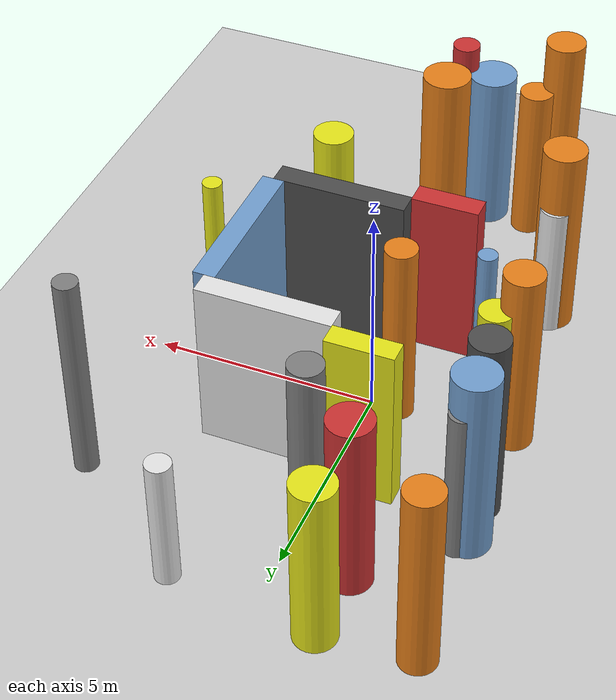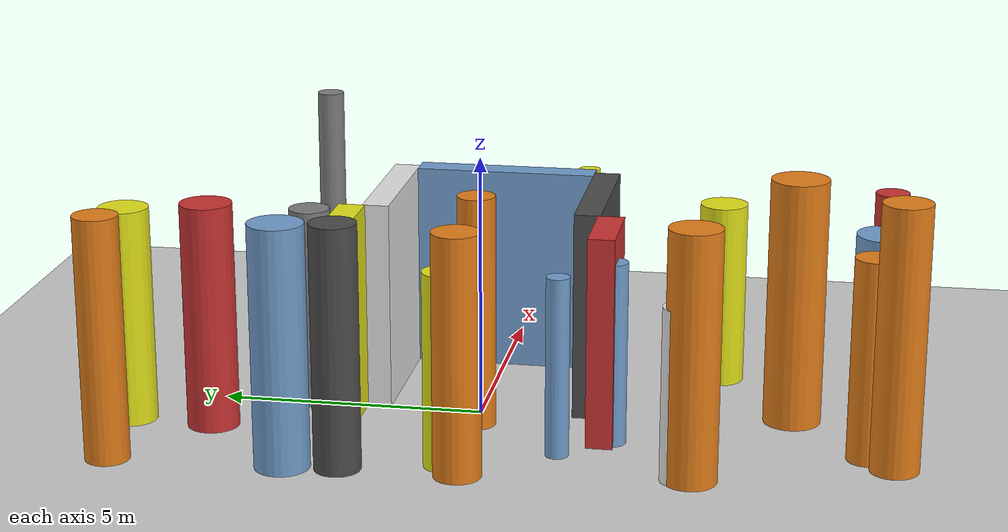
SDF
<?xml version='1.0'?>
<sdf version='1.6'>
  <world name='routeA_rl_v1__dense_recovery__rl_test__cul_de_sac_trap__000021'>
    <!-- Sun light -->
    <light name='sun' type='directional'>
      <cast_shadows>1</cast_shadows>
      <pose>0 0 10 0 0 0</pose>
      <diffuse>0.8 0.8 0.8 1</diffuse>
      <specular>0.2 0.2 0.2 1</specular>
      <attenuation>
        <range>1000</range>
        <constant>0.9</constant>
        <linear>0.01</linear>
        <quadratic>0.001</quadratic>
      </attenuation>
      <direction>-0.5 0.1 -0.9</direction>
    </light>

    <!-- Ground plane -->
    <model name='ground_plane'>
      <static>1</static>
      <link name='link'>
        <collision name='collision'>
          <geometry>
            <plane>
              <normal>0 0 1</normal>
              <size>100 100</size>
            </plane>
          </geometry>
          <surface>
            <contact>
              <collide_bitmask>65535</collide_bitmask>
              <ode/>
            </contact>
            <friction>
              <ode>
                <mu>100</mu>
                <mu2>50</mu2>
              </ode>
              <torsional><ode/></torsional>
            </friction>
            <bounce/>
          </surface>
          <max_contacts>10</max_contacts>
        </collision>
        <visual name='visual'>
          <cast_shadows>0</cast_shadows>
          <geometry>
            <plane>
              <normal>0 0 1</normal>
              <size>100 100</size>
            </plane>
          </geometry>
          <material>
            <script>
              <uri>file://media/materials/scripts/gazebo.material</uri>
              <n>Gazebo/Grey</n>
            </script>
          </material>
        </visual>
      </link>
    </model>

    <!-- Environment -->
    <magnetic_field>6e-06 2.3e-05 -4.2e-05</magnetic_field>
    <atmosphere type='adiabatic'/>
    <physics name='default_physics' default='0' type='ode'>
      <gravity>0 0 -9.8</gravity>
      <max_step_size>0.004</max_step_size>
      <real_time_factor>1</real_time_factor>
      <real_time_update_rate>250</real_time_update_rate>
    </physics>
    <scene>
      <ambient>0.4 0.4 0.4 1</ambient>
      <background>0.7 0.7 0.7 1</background>
      <shadows>1</shadows>
    </scene>
    <wind/>
    <spherical_coordinates>
      <surface_model>EARTH_WGS84</surface_model>
      <latitude_deg>0</latitude_deg>
      <longitude_deg>0</longitude_deg>
      <elevation>0</elevation>
      <heading_deg>0</heading_deg>
    </spherical_coordinates>

    <!-- ============ OBSTACLES (28) ============ -->
    <model name='trap_side_l'>
      <static>1</static>
      <link name='link'>
        <visual name='visual'>
          <geometry>
            <box>
              <size>3.0000 0.5000 4.0000</size>
            </box>
          </geometry>
          <material>
            <script>
              <n>Gazebo/DarkGrey</n>
              <uri>file://media/materials/scripts/gazebo.material</uri>
            </script>
            <ambient>0.3 0.3 0.3 1</ambient>
          </material>
        </visual>
        <collision name='collision'>
          <geometry>
            <box>
              <size>3.0000 0.5000 4.0000</size>
            </box>
          </geometry>
          <max_contacts>10</max_contacts>
          <surface>
            <contact><ode/></contact>
            <bounce/>
            <friction>
              <ode><mu>1</mu><mu2>1</mu2></ode>
              <torsional><ode/></torsional>
            </friction>
          </surface>
        </collision>
      </link>
      <pose>1.5000 -2.0000 2.0000 0 0 0.0000</pose>
    </model>

    <model name='trap_side_r'>
      <static>1</static>
      <link name='link'>
        <visual name='visual'>
          <geometry>
            <box>
              <size>3.0000 0.5000 4.0000</size>
            </box>
          </geometry>
          <material>
            <script>
              <n>Gazebo/White</n>
              <uri>file://media/materials/scripts/gazebo.material</uri>
            </script>
            <ambient>0.9 0.9 0.9 1</ambient>
          </material>
        </visual>
        <collision name='collision'>
          <geometry>
            <box>
              <size>3.0000 0.5000 4.0000</size>
            </box>
          </geometry>
          <max_contacts>10</max_contacts>
          <surface>
            <contact><ode/></contact>
            <bounce/>
            <friction>
              <ode><mu>1</mu><mu2>1</mu2></ode>
              <torsional><ode/></torsional>
            </friction>
          </surface>
        </collision>
      </link>
      <pose>1.5000 2.0000 2.0000 0 0 0.0000</pose>
    </model>

    <model name='trap_back'>
      <static>1</static>
      <link name='link'>
        <visual name='visual'>
          <geometry>
            <box>
              <size>0.5000 3.5000 4.0000</size>
            </box>
          </geometry>
          <material>
            <script>
              <n>Gazebo/Blue</n>
              <uri>file://media/materials/scripts/gazebo.material</uri>
            </script>
            <ambient>0.447 0.624 0.812 1</ambient>
          </material>
        </visual>
        <collision name='collision'>
          <geometry>
            <box>
              <size>0.5000 3.5000 4.0000</size>
            </box>
          </geometry>
          <max_contacts>10</max_contacts>
          <surface>
            <contact><ode/></contact>
            <bounce/>
            <friction>
              <ode><mu>1</mu><mu2>1</mu2></ode>
              <torsional><ode/></torsional>
            </friction>
          </surface>
        </collision>
      </link>
      <pose>3.0000 0.0000 2.0000 0 0 0.0000</pose>
    </model>

    <model name='trap_funnel_l'>
      <static>1</static>
      <link name='link'>
        <visual name='visual'>
          <geometry>
            <box>
              <size>1.5000 0.5000 4.0000</size>
            </box>
          </geometry>
          <material>
            <script>
              <n>Gazebo/Red</n>
              <uri>file://media/materials/scripts/gazebo.material</uri>
            </script>
            <ambient>0.8 0.2 0.2 1</ambient>
          </material>
        </visual>
        <collision name='collision'>
          <geometry>
            <box>
              <size>1.5000 0.5000 4.0000</size>
            </box>
          </geometry>
          <max_contacts>10</max_contacts>
          <surface>
            <contact><ode/></contact>
            <bounce/>
            <friction>
              <ode><mu>1</mu><mu2>1</mu2></ode>
              <torsional><ode/></torsional>
            </friction>
          </surface>
        </collision>
      </link>
      <pose>-0.7500 -2.4500 2.0000 0 0 0.0000</pose>
    </model>

    <model name='trap_funnel_r'>
      <static>1</static>
      <link name='link'>
        <visual name='visual'>
          <geometry>
            <box>
              <size>1.5000 0.5000 4.0000</size>
            </box>
          </geometry>
          <material>
            <script>
              <n>Gazebo/Yellow</n>
              <uri>file://media/materials/scripts/gazebo.material</uri>
            </script>
            <ambient>0.9 0.9 0.1 1</ambient>
          </material>
        </visual>
        <collision name='collision'>
          <geometry>
            <box>
              <size>1.5000 0.5000 4.0000</size>
            </box>
          </geometry>
          <max_contacts>10</max_contacts>
          <surface>
            <contact><ode/></contact>
            <bounce/>
            <friction>
              <ode><mu>1</mu><mu2>1</mu2></ode>
              <torsional><ode/></torsional>
            </friction>
          </surface>
        </collision>
      </link>
      <pose>-0.7500 2.4500 2.0000 0 0 0.0000</pose>
    </model>

    <model name='trap_scatter_0'>
      <static>1</static>
      <link name='link'>
        <visual name='visual'>
          <geometry>
            <cylinder>
              <radius>0.2662</radius>
              <length>4.9721</length>
            </cylinder>
          </geometry>
          <material>
            <script>
              <n>Gazebo/Grey</n>
              <uri>file://media/materials/scripts/gazebo.material</uri>
            </script>
            <ambient>0.5 0.5 0.5 1</ambient>
          </material>
        </visual>
        <collision name='collision'>
          <geometry>
            <cylinder>
              <radius>0.2662</radius>
              <length>4.9721</length>
            </cylinder>
          </geometry>
          <max_contacts>10</max_contacts>
          <surface>
            <contact><ode/></contact>
            <bounce/>
            <friction>
              <ode><mu>1</mu><mu2>1</mu2></ode>
              <torsional><ode/></torsional>
            </friction>
          </surface>
        </collision>
      </link>
      <pose>4.8474 4.0068 2.4860 0 0 0.0000</pose>
    </model>

    <model name='trap_scatter_1'>
      <static>1</static>
      <link name='link'>
        <visual name='visual'>
          <geometry>
            <cylinder>
              <radius>0.3752</radius>
              <length>3.2376</length>
            </cylinder>
          </geometry>
          <material>
            <script>
              <n>Gazebo/White</n>
              <uri>file://media/materials/scripts/gazebo.material</uri>
            </script>
            <ambient>0.9 0.9 0.9 1</ambient>
          </material>
        </visual>
        <collision name='collision'>
          <geometry>
            <cylinder>
              <radius>0.3752</radius>
              <length>3.2376</length>
            </cylinder>
          </geometry>
          <max_contacts>10</max_contacts>
          <surface>
            <contact><ode/></contact>
            <bounce/>
            <friction>
              <ode><mu>1</mu><mu2>1</mu2></ode>
              <torsional><ode/></torsional>
            </friction>
          </surface>
        </collision>
      </link>
      <pose>-2.7094 -4.0596 1.6188 0 0 0.0000</pose>
    </model>

    <model name='trap_scatter_2'>
      <static>1</static>
      <link name='link'>
        <visual name='visual'>
          <geometry>
            <cylinder>
              <radius>0.3789</radius>
              <length>3.6616</length>
            </cylinder>
          </geometry>
          <material>
            <script>
              <n>Gazebo/Yellow</n>
              <uri>file://media/materials/scripts/gazebo.material</uri>
            </script>
            <ambient>0.9 0.9 0.1 1</ambient>
          </material>
        </visual>
        <collision name='collision'>
          <geometry>
            <cylinder>
              <radius>0.3789</radius>
              <length>3.6616</length>
            </cylinder>
          </geometry>
          <max_contacts>10</max_contacts>
          <surface>
            <contact><ode/></contact>
            <bounce/>
            <friction>
              <ode><mu>1</mu><mu2>1</mu2></ode>
              <torsional><ode/></torsional>
            </friction>
          </surface>
        </collision>
      </link>
      <pose>-2.7348 0.1863 1.8308 0 0 0.0000</pose>
    </model>

    <model name='trap_scatter_3'>
      <static>1</static>
      <link name='link'>
        <visual name='visual'>
          <geometry>
            <cylinder>
              <radius>0.5441</radius>
              <length>4.7307</length>
            </cylinder>
          </geometry>
          <material>
            <script>
              <n>Gazebo/Orange</n>
              <uri>file://media/materials/scripts/gazebo.material</uri>
            </script>
            <ambient>0.9 0.5 0.1 1</ambient>
          </material>
        </visual>
        <collision name='collision'>
          <geometry>
            <cylinder>
              <radius>0.5441</radius>
              <length>4.7307</length>
            </cylinder>
          </geometry>
          <max_contacts>10</max_contacts>
          <surface>
            <contact><ode/></contact>
            <bounce/>
            <friction>
              <ode><mu>1</mu><mu2>1</mu2></ode>
              <torsional><ode/></torsional>
            </friction>
          </surface>
        </collision>
      </link>
      <pose>0.5375 -5.8595 2.3653 0 0 0.0000</pose>
    </model>

    <model name='trap_scatter_4'>
      <static>1</static>
      <link name='link'>
        <visual name='visual'>
          <geometry>
            <cylinder>
              <radius>0.5519</radius>
              <length>3.9293</length>
            </cylinder>
          </geometry>
          <material>
            <script>
              <n>Gazebo/Blue</n>
              <uri>file://media/materials/scripts/gazebo.material</uri>
            </script>
            <ambient>0.447 0.624 0.812 1</ambient>
          </material>
        </visual>
        <collision name='collision'>
          <geometry>
            <cylinder>
              <radius>0.5519</radius>
              <length>3.9293</length>
            </cylinder>
          </geometry>
          <max_contacts>10</max_contacts>
          <surface>
            <contact><ode/></contact>
            <bounce/>
            <friction>
              <ode><mu>1</mu><mu2>1</mu2></ode>
              <torsional><ode/></torsional>
            </friction>
          </surface>
        </collision>
      </link>
      <pose>-0.0468 -7.4672 1.9647 0 0 0.0000</pose>
    </model>

    <model name='trap_scatter_5'>
      <static>1</static>
      <link name='link'>
        <visual name='visual'>
          <geometry>
            <cylinder>
              <radius>0.3896</radius>
              <length>3.8564</length>
            </cylinder>
          </geometry>
          <material>
            <script>
              <n>Gazebo/Grey</n>
              <uri>file://media/materials/scripts/gazebo.material</uri>
            </script>
            <ambient>0.5 0.5 0.5 1</ambient>
          </material>
        </visual>
        <collision name='collision'>
          <geometry>
            <cylinder>
              <radius>0.3896</radius>
              <length>3.8564</length>
            </cylinder>
          </geometry>
          <max_contacts>10</max_contacts>
          <surface>
            <contact><ode/></contact>
            <bounce/>
            <friction>
              <ode><mu>1</mu><mu2>1</mu2></ode>
              <torsional><ode/></torsional>
            </friction>
          </surface>
        </collision>
      </link>
      <pose>0.1045 3.3022 1.9282 0 0 0.0000</pose>
    </model>

    <model name='trap_scatter_7'>
      <static>1</static>
      <link name='link'>
        <visual name='visual'>
          <geometry>
            <cylinder>
              <radius>0.4151</radius>
              <length>4.5850</length>
            </cylinder>
          </geometry>
          <material>
            <script>
              <n>Gazebo/Orange</n>
              <uri>file://media/materials/scripts/gazebo.material</uri>
            </script>
            <ambient>0.9 0.5 0.1 1</ambient>
          </material>
        </visual>
        <collision name='collision'>
          <geometry>
            <cylinder>
              <radius>0.4151</radius>
              <length>4.5850</length>
            </cylinder>
          </geometry>
          <max_contacts>10</max_contacts>
          <surface>
            <contact><ode/></contact>
            <bounce/>
            <friction>
              <ode><mu>1</mu><mu2>1</mu2></ode>
              <torsional><ode/></torsional>
            </friction>
          </surface>
        </collision>
      </link>
      <pose>-3.4140 6.2667 2.2925 0 0 0.0000</pose>
    </model>

    <model name='trap_scatter_8'>
      <static>1</static>
      <link name='link'>
        <visual name='visual'>
          <geometry>
            <cylinder>
              <radius>0.4872</radius>
              <length>4.6714</length>
            </cylinder>
          </geometry>
          <material>
            <script>
              <n>Gazebo/Orange</n>
              <uri>file://media/materials/scripts/gazebo.material</uri>
            </script>
            <ambient>0.9 0.5 0.1 1</ambient>
          </material>
        </visual>
        <collision name='collision'>
          <geometry>
            <cylinder>
              <radius>0.4872</radius>
              <length>4.6714</length>
            </cylinder>
          </geometry>
          <max_contacts>10</max_contacts>
          <surface>
            <contact><ode/></contact>
            <bounce/>
            <friction>
              <ode><mu>1</mu><mu2>1</mu2></ode>
              <torsional><ode/></torsional>
            </friction>
          </surface>
        </collision>
      </link>
      <pose>-2.7289 -4.2395 2.3357 0 0 0.0000</pose>
    </model>

    <model name='trap_scatter_9'>
      <static>1</static>
      <link name='link'>
        <visual name='visual'>
          <geometry>
            <cylinder>
              <radius>0.2760</radius>
              <length>3.1288</length>
            </cylinder>
          </geometry>
          <material>
            <script>
              <n>Gazebo/White</n>
              <uri>file://media/materials/scripts/gazebo.material</uri>
            </script>
            <ambient>0.9 0.9 0.9 1</ambient>
          </material>
        </visual>
        <collision name='collision'>
          <geometry>
            <cylinder>
              <radius>0.2760</radius>
              <length>3.1288</length>
            </cylinder>
          </geometry>
          <max_contacts>10</max_contacts>
          <surface>
            <contact><ode/></contact>
            <bounce/>
            <friction>
              <ode><mu>1</mu><mu2>1</mu2></ode>
              <torsional><ode/></torsional>
            </friction>
          </surface>
        </collision>
      </link>
      <pose>1.9167 6.1511 1.5644 0 0 0.0000</pose>
    </model>

    <model name='trap_scatter_10'>
      <static>1</static>
      <link name='link'>
        <visual name='visual'>
          <geometry>
            <cylinder>
              <radius>0.2196</radius>
              <length>3.4030</length>
            </cylinder>
          </geometry>
          <material>
            <script>
              <n>Gazebo/Blue</n>
              <uri>file://media/materials/scripts/gazebo.material</uri>
            </script>
            <ambient>0.447 0.624 0.812 1</ambient>
          </material>
        </visual>
        <collision name='collision'>
          <geometry>
            <cylinder>
              <radius>0.2196</radius>
              <length>3.4030</length>
            </cylinder>
          </geometry>
          <max_contacts>10</max_contacts>
          <surface>
            <contact><ode/></contact>
            <bounce/>
            <friction>
              <ode><mu>1</mu><mu2>1</mu2></ode>
              <torsional><ode/></torsional>
            </friction>
          </surface>
        </collision>
      </link>
      <pose>-1.9027 -1.7390 1.7015 0 0 0.0000</pose>
    </model>

    <model name='trap_scatter_11'>
      <static>1</static>
      <link name='link'>
        <visual name='visual'>
          <geometry>
            <cylinder>
              <radius>0.4718</radius>
              <length>4.1492</length>
            </cylinder>
          </geometry>
          <material>
            <script>
              <n>Gazebo/Yellow</n>
              <uri>file://media/materials/scripts/gazebo.material</uri>
            </script>
            <ambient>0.9 0.9 0.1 1</ambient>
          </material>
        </visual>
        <collision name='collision'>
          <geometry>
            <cylinder>
              <radius>0.4718</radius>
              <length>4.1492</length>
            </cylinder>
          </geometry>
          <max_contacts>10</max_contacts>
          <surface>
            <contact><ode/></contact>
            <bounce/>
            <friction>
              <ode><mu>1</mu><mu2>1</mu2></ode>
              <torsional><ode/></torsional>
            </friction>
          </surface>
        </collision>
      </link>
      <pose>-1.3811 6.4486 2.0746 0 0 0.0000</pose>
    </model>

    <model name='trap_scatter_12'>
      <static>1</static>
      <link name='link'>
        <visual name='visual'>
          <geometry>
            <cylinder>
              <radius>0.4524</radius>
              <length>4.9761</length>
            </cylinder>
          </geometry>
          <material>
            <script>
              <n>Gazebo/Orange</n>
              <uri>file://media/materials/scripts/gazebo.material</uri>
            </script>
            <ambient>0.9 0.5 0.1 1</ambient>
          </material>
        </visual>
        <collision name='collision'>
          <geometry>
            <cylinder>
              <radius>0.4524</radius>
              <length>4.9761</length>
            </cylinder>
          </geometry>
          <max_contacts>10</max_contacts>
          <surface>
            <contact><ode/></contact>
            <bounce/>
            <friction>
              <ode><mu>1</mu><mu2>1</mu2></ode>
              <torsional><ode/></torsional>
            </friction>
          </surface>
        </collision>
      </link>
      <pose>-1.6256 -7.7975 2.4880 0 0 0.0000</pose>
    </model>

    <model name='trap_scatter_13'>
      <static>1</static>
      <link name='link'>
        <visual name='visual'>
          <geometry>
            <cylinder>
              <radius>0.2622</radius>
              <length>3.4815</length>
            </cylinder>
          </geometry>
          <material>
            <script>
              <n>Gazebo/Blue</n>
              <uri>file://media/materials/scripts/gazebo.material</uri>
            </script>
            <ambient>0.447 0.624 0.812 1</ambient>
          </material>
        </visual>
        <collision name='collision'>
          <geometry>
            <cylinder>
              <radius>0.2622</radius>
              <length>3.4815</length>
            </cylinder>
          </geometry>
          <max_contacts>10</max_contacts>
          <surface>
            <contact><ode/></contact>
            <bounce/>
            <friction>
              <ode><mu>1</mu><mu2>1</mu2></ode>
              <torsional><ode/></torsional>
            </friction>
          </surface>
        </collision>
      </link>
      <pose>-1.1116 -2.6467 1.7407 0 0 0.0000</pose>
    </model>

    <model name='trap_scatter_15'>
      <static>1</static>
      <link name='link'>
        <visual name='visual'>
          <geometry>
            <cylinder>
              <radius>0.3108</radius>
              <length>4.5140</length>
            </cylinder>
          </geometry>
          <material>
            <script>
              <n>Gazebo/Red</n>
              <uri>file://media/materials/scripts/gazebo.material</uri>
            </script>
            <ambient>0.8 0.2 0.2 1</ambient>
          </material>
        </visual>
        <collision name='collision'>
          <geometry>
            <cylinder>
              <radius>0.3108</radius>
              <length>4.5140</length>
            </cylinder>
          </geometry>
          <max_contacts>10</max_contacts>
          <surface>
            <contact><ode/></contact>
            <bounce/>
            <friction>
              <ode><mu>1</mu><mu2>1</mu2></ode>
              <torsional><ode/></torsional>
            </friction>
          </surface>
        </collision>
      </link>
      <pose>0.6537 -7.5313 2.2570 0 0 0.0000</pose>
    </model>

    <model name='trap_scatter_16'>
      <static>1</static>
      <link name='link'>
        <visual name='visual'>
          <geometry>
            <cylinder>
              <radius>0.5102</radius>
              <length>4.5603</length>
            </cylinder>
          </geometry>
          <material>
            <script>
              <n>Gazebo/Blue</n>
              <uri>file://media/materials/scripts/gazebo.material</uri>
            </script>
            <ambient>0.447 0.624 0.812 1</ambient>
          </material>
        </visual>
        <collision name='collision'>
          <geometry>
            <cylinder>
              <radius>0.5102</radius>
              <length>4.5603</length>
            </cylinder>
          </geometry>
          <max_contacts>10</max_contacts>
          <surface>
            <contact><ode/></contact>
            <bounce/>
            <friction>
              <ode><mu>1</mu><mu2>1</mu2></ode>
              <torsional><ode/></torsional>
            </friction>
          </surface>
        </collision>
      </link>
      <pose>-3.2682 3.0438 2.2801 0 0 0.0000</pose>
    </model>

    <model name='trap_scatter_17'>
      <static>1</static>
      <link name='link'>
        <visual name='visual'>
          <geometry>
            <cylinder>
              <radius>0.4426</radius>
              <length>4.5264</length>
            </cylinder>
          </geometry>
          <material>
            <script>
              <n>Gazebo/Orange</n>
              <uri>file://media/materials/scripts/gazebo.material</uri>
            </script>
            <ambient>0.9 0.5 0.1 1</ambient>
          </material>
        </visual>
        <collision name='collision'>
          <geometry>
            <cylinder>
              <radius>0.4426</radius>
              <length>4.5264</length>
            </cylinder>
          </geometry>
          <max_contacts>10</max_contacts>
          <surface>
            <contact><ode/></contact>
            <bounce/>
            <friction>
              <ode><mu>1</mu><mu2>1</mu2></ode>
              <torsional><ode/></torsional>
            </friction>
          </surface>
        </collision>
      </link>
      <pose>-3.1669 -0.1344 2.2632 0 0 0.0000</pose>
    </model>

    <model name='trap_scatter_18'>
      <static>1</static>
      <link name='link'>
        <visual name='visual'>
          <geometry>
            <cylinder>
              <radius>0.4595</radius>
              <length>3.5919</length>
            </cylinder>
          </geometry>
          <material>
            <script>
              <n>Gazebo/Yellow</n>
              <uri>file://media/materials/scripts/gazebo.material</uri>
            </script>
            <ambient>0.9 0.9 0.1 1</ambient>
          </material>
        </visual>
        <collision name='collision'>
          <geometry>
            <cylinder>
              <radius>0.4595</radius>
              <length>3.5919</length>
            </cylinder>
          </geometry>
          <max_contacts>10</max_contacts>
          <surface>
            <contact><ode/></contact>
            <bounce/>
            <friction>
              <ode><mu>1</mu><mu2>1</mu2></ode>
              <torsional><ode/></torsional>
            </friction>
          </surface>
        </collision>
      </link>
      <pose>2.6639 -4.3297 1.7960 0 0 0.0000</pose>
    </model>

    <model name='trap_scatter_19'>
      <static>1</static>
      <link name='link'>
        <visual name='visual'>
          <geometry>
            <cylinder>
              <radius>0.4888</radius>
              <length>4.3224</length>
            </cylinder>
          </geometry>
          <material>
            <script>
              <n>Gazebo/Red</n>
              <uri>file://media/materials/scripts/gazebo.material</uri>
            </script>
            <ambient>0.8 0.2 0.2 1</ambient>
          </material>
        </visual>
        <collision name='collision'>
          <geometry>
            <cylinder>
              <radius>0.4888</radius>
              <length>4.3224</length>
            </cylinder>
          </geometry>
          <max_contacts>10</max_contacts>
          <surface>
            <contact><ode/></contact>
            <bounce/>
            <friction>
              <ode><mu>1</mu><mu2>1</mu2></ode>
              <torsional><ode/></torsional>
            </friction>
          </surface>
        </collision>
      </link>
      <pose>-1.4483 4.8473 2.1612 0 0 0.0000</pose>
    </model>

    <model name='trap_scatter_20'>
      <static>1</static>
      <link name='link'>
        <visual name='visual'>
          <geometry>
            <cylinder>
              <radius>0.4320</radius>
              <length>4.5872</length>
            </cylinder>
          </geometry>
          <material>
            <script>
              <n>Gazebo/DarkGrey</n>
              <uri>file://media/materials/scripts/gazebo.material</uri>
            </script>
            <ambient>0.3 0.3 0.3 1</ambient>
          </material>
        </visual>
        <collision name='collision'>
          <geometry>
            <cylinder>
              <radius>0.4320</radius>
              <length>4.5872</length>
            </cylinder>
          </geometry>
          <max_contacts>10</max_contacts>
          <surface>
            <contact><ode/></contact>
            <bounce/>
            <friction>
              <ode><mu>1</mu><mu2>1</mu2></ode>
              <torsional><ode/></torsional>
            </friction>
          </surface>
        </collision>
      </link>
      <pose>-3.1879 2.0430 2.2936 0 0 0.0000</pose>
    </model>

    <model name='trap_scatter_21'>
      <static>1</static>
      <link name='link'>
        <visual name='visual'>
          <geometry>
            <cylinder>
              <radius>0.2921</radius>
              <length>3.7290</length>
            </cylinder>
          </geometry>
          <material>
            <script>
              <n>Gazebo/Grey</n>
              <uri>file://media/materials/scripts/gazebo.material</uri>
            </script>
            <ambient>0.5 0.5 0.5 1</ambient>
          </material>
        </visual>
        <collision name='collision'>
          <geometry>
            <cylinder>
              <radius>0.2921</radius>
              <length>3.7290</length>
            </cylinder>
          </geometry>
          <max_contacts>10</max_contacts>
          <surface>
            <contact><ode/></contact>
            <bounce/>
            <friction>
              <ode><mu>1</mu><mu2>1</mu2></ode>
              <torsional><ode/></torsional>
            </friction>
          </surface>
        </collision>
      </link>
      <pose>-3.1244 3.3121 1.8645 0 0 0.0000</pose>
    </model>

    <model name='trap_scatter_22'>
      <static>1</static>
      <link name='link'>
        <visual name='visual'>
          <geometry>
            <cylinder>
              <radius>0.2212</radius>
              <length>3.7132</length>
            </cylinder>
          </geometry>
          <material>
            <script>
              <n>Gazebo/Yellow</n>
              <uri>file://media/materials/scripts/gazebo.material</uri>
            </script>
            <ambient>0.9 0.9 0.1 1</ambient>
          </material>
        </visual>
        <collision name='collision'>
          <geometry>
            <cylinder>
              <radius>0.2212</radius>
              <length>3.7132</length>
            </cylinder>
          </geometry>
          <max_contacts>10</max_contacts>
          <surface>
            <contact><ode/></contact>
            <bounce/>
            <friction>
              <ode><mu>1</mu><mu2>1</mu2></ode>
              <torsional><ode/></torsional>
            </friction>
          </surface>
        </collision>
      </link>
      <pose>4.3373 -1.4697 1.8566 0 0 0.0000</pose>
    </model>

    <model name='trap_scatter_23'>
      <static>1</static>
      <link name='link'>
        <visual name='visual'>
          <geometry>
            <cylinder>
              <radius>0.3875</radius>
              <length>3.8237</length>
            </cylinder>
          </geometry>
          <material>
            <script>
              <n>Gazebo/Orange</n>
              <uri>file://media/materials/scripts/gazebo.material</uri>
            </script>
            <ambient>0.9 0.5 0.1 1</ambient>
          </material>
        </visual>
        <collision name='collision'>
          <geometry>
            <cylinder>
              <radius>0.3875</radius>
              <length>3.8237</length>
            </cylinder>
          </geometry>
          <max_contacts>10</max_contacts>
          <surface>
            <contact><ode/></contact>
            <bounce/>
            <friction>
              <ode><mu>1</mu><mu2>1</mu2></ode>
              <torsional><ode/></torsional>
            </friction>
          </surface>
        </collision>
      </link>
      <pose>-1.1678 -7.3081 1.9119 0 0 0.0000</pose>
    </model>

    <model name='trap_scatter_24'>
      <static>1</static>
      <link name='link'>
        <visual name='visual'>
          <geometry>
            <cylinder>
              <radius>0.3572</radius>
              <length>4.4525</length>
            </cylinder>
          </geometry>
          <material>
            <script>
              <n>Gazebo/Orange</n>
              <uri>file://media/materials/scripts/gazebo.material</uri>
            </script>
            <ambient>0.9 0.5 0.1 1</ambient>
          </material>
        </visual>
        <collision name='collision'>
          <geometry>
            <cylinder>
              <radius>0.3572</radius>
              <length>4.4525</length>
            </cylinder>
          </geometry>
          <max_contacts>10</max_contacts>
          <surface>
            <contact><ode/></contact>
            <bounce/>
            <friction>
              <ode><mu>1</mu><mu2>1</mu2></ode>
              <torsional><ode/></torsional>
            </friction>
          </surface>
        </collision>
      </link>
      <pose>-0.5890 -0.0292 2.2262 0 0 0.0000</pose>
    </model>

    <!-- GUI camera -->
    <gui fullscreen='0'>
      <camera name='user_camera'>
        <pose>-15 0 18 0 0.85 0.15</pose>
        <view_controller>orbit</view_controller>
        <projection_type>perspective</projection_type>
      </camera>
    </gui>
  </world>
</sdf>
